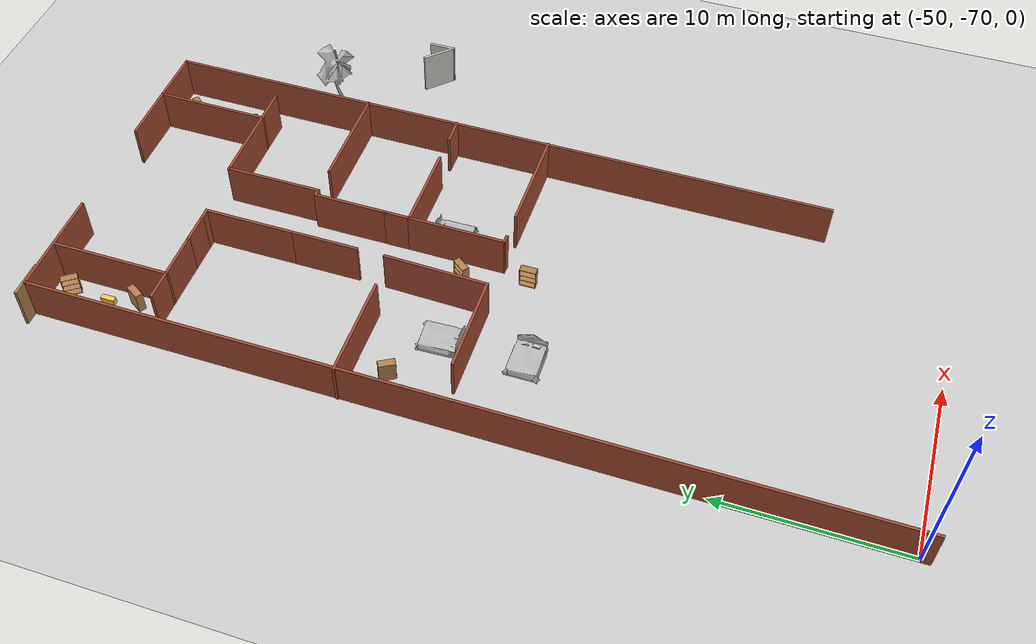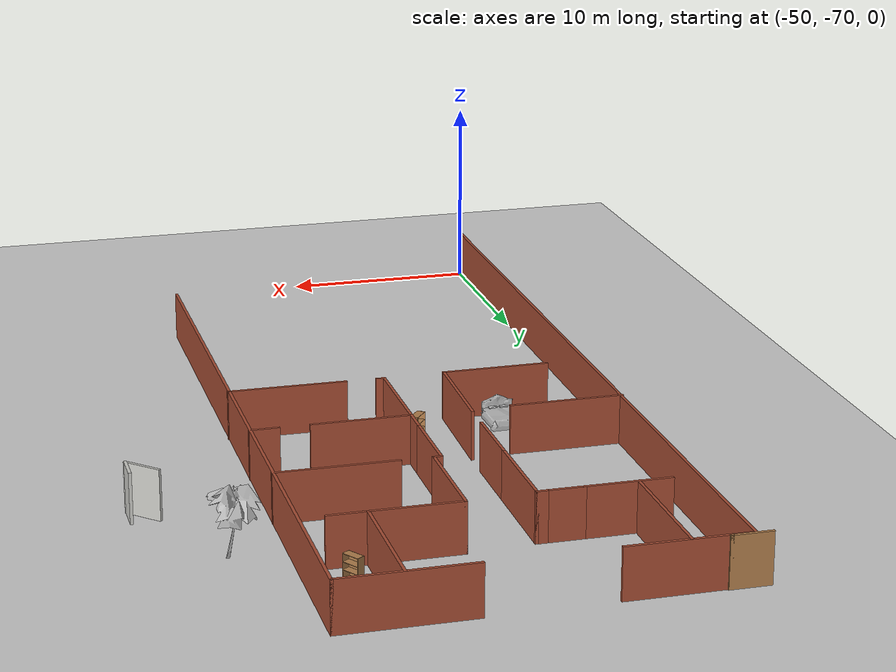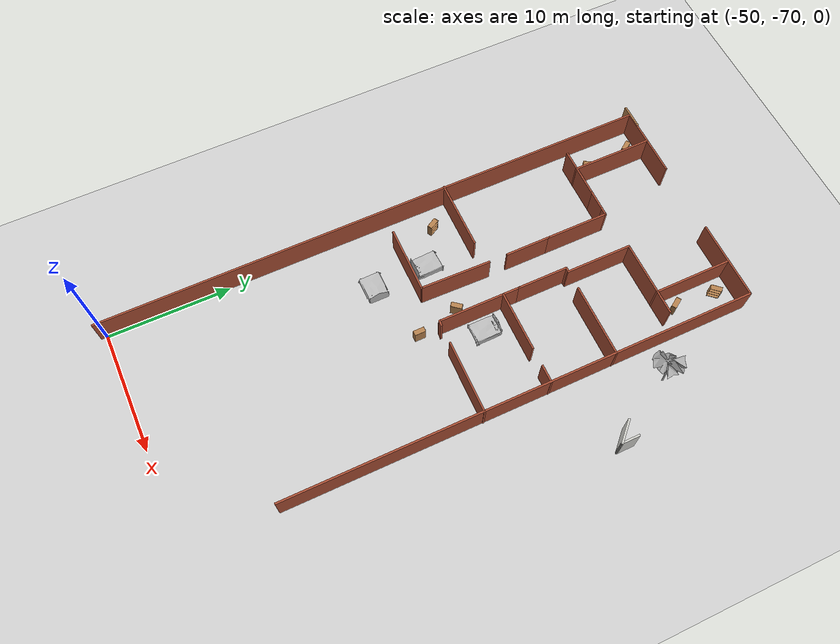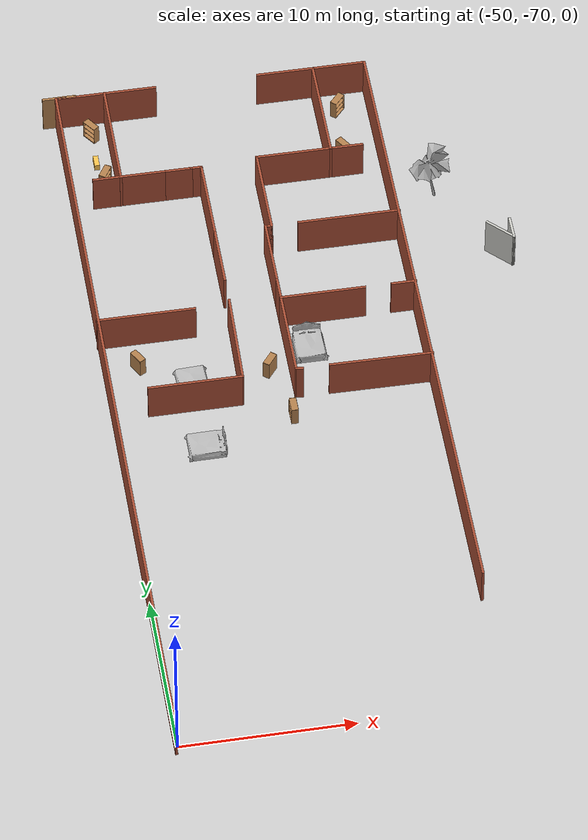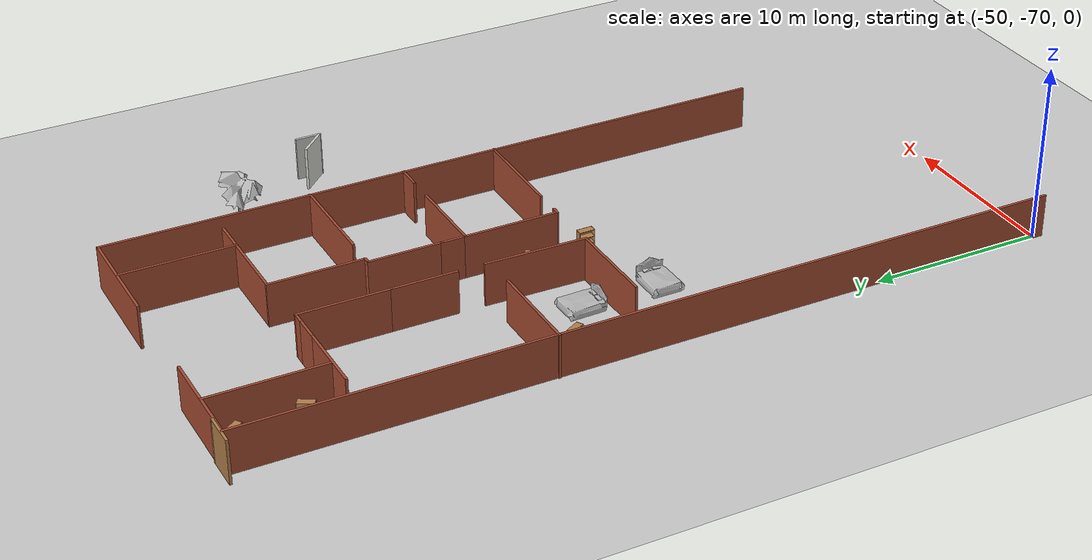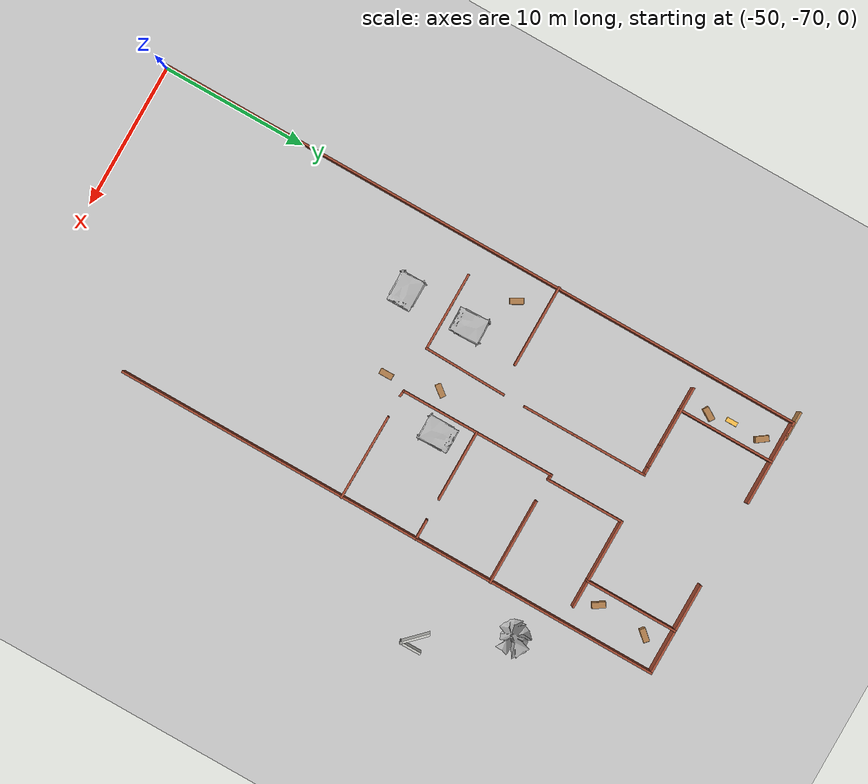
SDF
<sdf version="1.6">
 <world name="default">
  <model name="map_palace_v2_model_1_0">
   <pose>-3.1e-05 -55 0 0 -0 3.14</pose>
   <link name="Wall_272">
    <collision name="Wall_272_Collision">
     <geometry><box><size>4.25 0.15 2.5</size></box></geometry>
     <pose>0 0 1.25 0 -0 0</pose>
    </collision>
    <visual name="Wall_272_Visual">
     <pose>0 0 1.25 0 -0 0</pose>
     <geometry><box><size>4.25 0.15 2.5</size></box></geometry>
     <material>
      <script><uri>file://media/materials/scripts/gazebo.material</uri><name>Gazebo/Bricks</name></script>
      <ambient>1 1 1 1</ambient>
     </material>
     <meta><layer>0</layer></meta>
    </visual>
    <pose>46.7523 -24.2485 0 0 -0 3.14159</pose>
   </link>
   <link name="Wall_273">
    <collision name="Wall_273_Collision">
     <geometry><box><size>1.75 0.15 2.5</size></box></geometry>
     <pose>0 0 1.25 0 -0 0</pose>
    </collision>
    <visual name="Wall_273_Visual">
     <pose>0 0 1.25 0 -0 0</pose>
     <geometry><box><size>1.75 0.15 2.5</size></box></geometry>
     <material>
      <script><uri>file://media/materials/scripts/gazebo.material</uri><name>Gazebo/Bricks</name></script>
      <ambient>1 1 1 1</ambient>
     </material>
     <meta><layer>0</layer></meta>
    </visual>
    <pose>43.9023 -24.2485 0 0 -0 3.14159</pose>
   </link>
   <link name="Wall_274">
    <collision name="Wall_274_Collision">
     <geometry><box><size>0.75 0.15 2.5</size></box></geometry>
     <pose>0 0 1.25 0 -0 0</pose>
    </collision>
    <visual name="Wall_274_Visual">
     <pose>0 0 1.25 0 -0 0</pose>
     <geometry><box><size>0.75 0.15 2.5</size></box></geometry>
     <material>
      <script><uri>file://media/materials/scripts/gazebo.material</uri><name>Gazebo/Bricks</name></script>
      <ambient>1 1 1 1</ambient>
     </material>
     <meta><layer>0</layer></meta>
    </visual>
    <pose>42.8023 -24.2485 0 0 -0 3.14159</pose>
   </link>
   <link name="Wall_275">
    <collision name="Wall_275_Collision">
     <geometry><box><size>5.25 0.15 2.5</size></box></geometry>
     <pose>0 0 1.25 0 -0 0</pose>
    </collision>
    <visual name="Wall_275_Visual">
     <pose>0 0 1.25 0 -0 0</pose>
     <geometry><box><size>5.25 0.15 2.5</size></box></geometry>
     <material>
      <script><uri>file://media/materials/scripts/gazebo.material</uri><name>Gazebo/Bricks</name></script>
      <ambient>1 1 1 1</ambient>
     </material>
     <meta><layer>0</layer></meta>
    </visual>
    <pose>42.5023 -21.6985 0 0 -0 1.5708</pose>
   </link>
   <link name="Wall_277">
    <collision name="Wall_277_Collision">
     <geometry><box><size>6.75 0.15 2.5</size></box></geometry>
     <pose>0 0 1.25 0 -0 0</pose>
    </collision>
    <visual name="Wall_277_Visual">
     <pose>0 0 1.25 0 -0 0</pose>
     <geometry><box><size>6.75 0.15 2.5</size></box></geometry>
     <material>
      <script><uri>file://media/materials/scripts/gazebo.material</uri><name>Gazebo/Bricks</name></script>
      <ambient>1 1 1 1</ambient>
     </material>
     <meta><layer>0</layer></meta>
    </visual>
    <pose>47.2274 -27.5415 0 0 -0 -1.5708</pose>
   </link>
   <link name="Wall_279">
    <collision name="Wall_279_Collision">
     <geometry><box><size>6.5 0.15 2.5</size></box></geometry>
     <pose>0 0 1.25 0 -0 0</pose>
    </collision>
    <visual name="Wall_279_Visual">
     <pose>0 0 1.25 0 -0 0</pose>
     <geometry><box><size>6.5 0.15 2.5</size></box></geometry>
     <material>
      <script><uri>file://media/materials/scripts/gazebo.material</uri><name>Gazebo/Bricks</name></script>
      <ambient>1 1 1 1</ambient>
     </material>
     <meta><layer>0</layer></meta>
    </visual>
    <pose>34.8569 -27.66 0 0 -0 1.5708</pose>
   </link>
   <link name="Wall_280">
    <collision name="Wall_280_Collision">
     <geometry><box><size>2 0.15 2.5</size></box></geometry>
     <pose>0 0 1.25 0 -0 0</pose>
    </collision>
    <visual name="Wall_280_Visual">
     <pose>0 0 1.25 0 -0 0</pose>
     <geometry><box><size>2 0.15 2.5</size></box></geometry>
     <material>
      <script><uri>file://media/materials/scripts/gazebo.material</uri><name>Gazebo/Bricks</name></script>
      <ambient>1 1 1 1</ambient>
     </material>
     <meta><layer>0</layer></meta>
    </visual>
    <pose>33.9319 -24.4851 0 0 -0 3.14159</pose>
   </link>
   <link name="Wall_283">
    <collision name="Wall_283_Collision">
     <geometry><box><size>4.5 0.15 2.5</size></box></geometry>
     <pose>0 0 1.25 0 -0 0</pose>
    </collision>
    <visual name="Wall_283_Visual">
     <pose>0 0 1.25 0 -0 0</pose>
     <geometry><box><size>4.5 0.15 2.5</size></box></geometry>
     <material>
      <script><uri>file://media/materials/scripts/gazebo.material</uri><name>Gazebo/Bricks</name></script>
      <ambient>1 1 1 1</ambient>
     </material>
     <meta><layer>0</layer></meta>
    </visual>
    <pose>37.0319 -24.4851 0 0 -0 0</pose>
   </link>
   <link name="Wall_284">
    <collision name="Wall_284_Collision">
     <geometry><box><size>5.5 0.15 2.5</size></box></geometry>
     <pose>0 0 1.25 0 -0 0</pose>
    </collision>
    <visual name="Wall_284_Visual">
     <pose>0 0 1.25 0 -0 0</pose>
     <geometry><box><size>5.5 0.15 2.5</size></box></geometry>
     <material>
      <script><uri>file://media/materials/scripts/gazebo.material</uri><name>Gazebo/Bricks</name></script>
      <ambient>1 1 1 1</ambient>
     </material>
     <meta><layer>0</layer></meta>
    </visual>
    <pose>39.2069 -21.8101 0 0 -0 1.5708</pose>
   </link>
   <link name="Wall_286">
    <collision name="Wall_286_Collision">
     <geometry><box><size>6 0.15 2.5</size></box></geometry>
     <pose>0 0 1.25 0 -0 0</pose>
    </collision>
    <visual name="Wall_286_Visual">
     <pose>0 0 1.25 0 -0 0</pose>
     <geometry><box><size>6 0.15 2.5</size></box></geometry>
     <material>
      <script><uri>file://media/materials/scripts/gazebo.material</uri><name>Gazebo/Bricks</name></script>
      <ambient>1 1 1 1</ambient>
     </material>
     <meta><layer>0</layer></meta>
    </visual>
    <pose>34.6819 -19.1351 0 0 -0 3.14159</pose>
   </link>
   <link name="Wall_288">
    <collision name="Wall_288_Collision">
     <geometry><box><size>0.5 0.15 2.5</size></box></geometry>
     <pose>0 0 1.25 0 -0 0</pose>
    </collision>
    <visual name="Wall_288_Visual">
     <pose>0 0 1.25 0 -0 0</pose>
     <geometry><box><size>0.5 0.15 2.5</size></box></geometry>
     <material>
      <script><uri>file://media/materials/scripts/gazebo.material</uri><name>Gazebo/Bricks</name></script>
      <ambient>1 1 1 1</ambient>
     </material>
     <meta><layer>0</layer></meta>
    </visual>
    <pose>39.3819 -19.1351 0 0 -0 0</pose>
   </link>
   <link name="Wall_289">
    <collision name="Wall_289_Collision">
     <geometry><box><size>4.25 0.15 2.5</size></box></geometry>
     <pose>0 0 1.25 0 -0 0</pose>
    </collision>
    <visual name="Wall_289_Visual">
     <pose>0 0 1.25 0 -0 0</pose>
     <geometry><box><size>4.25 0.15 2.5</size></box></geometry>
     <material>
      <script><uri>file://media/materials/scripts/gazebo.material</uri><name>Gazebo/Bricks</name></script>
      <ambient>1 1 1 1</ambient>
     </material>
     <meta><layer>0</layer></meta>
    </visual>
    <pose>39.5569 -17.085 0 0 -0 1.5708</pose>
   </link>
   <link name="Wall_290">
    <collision name="Wall_290_Collision">
     <geometry><box><size>1.5 0.15 2.5</size></box></geometry>
     <pose>0 0 1.25 0 -0 0</pose>
    </collision>
    <visual name="Wall_290_Visual">
     <pose>0 0 1.25 0 -0 0</pose>
     <geometry><box><size>1.5 0.15 2.5</size></box></geometry>
     <material>
      <script><uri>file://media/materials/scripts/gazebo.material</uri><name>Gazebo/Bricks</name></script>
      <ambient>1 1 1 1</ambient>
     </material>
     <meta><layer>0</layer></meta>
    </visual>
    <pose>39.5569 -14.36 0 0 -0 1.5708</pose>
   </link>
   <link name="Wall_291">
    <collision name="Wall_291_Collision">
     <geometry><box><size>5 0.15 2.5</size></box></geometry>
     <pose>0 0 1.25 0 -0 0</pose>
    </collision>
    <visual name="Wall_291_Visual">
     <pose>0 0 1.25 0 -0 0</pose>
     <geometry><box><size>5 0.15 2.5</size></box></geometry>
     <material>
      <script><uri>file://media/materials/scripts/gazebo.material</uri><name>Gazebo/Bricks</name></script>
      <ambient>1 1 1 1</ambient>
     </material>
     <meta><layer>0</layer></meta>
    </visual>
    <pose>37.1319 -13.6851 0 0 -0 3.14159</pose>
   </link>
   <link name="Wall_293">
    <collision name="Wall_293_Collision">
     <geometry><box><size>1.5 0.15 2.5</size></box></geometry>
     <pose>0 0 1.25 0 -0 0</pose>
    </collision>
    <visual name="Wall_293_Visual">
     <pose>0 0 1.25 0 -0 0</pose>
     <geometry><box><size>1.5 0.15 2.5</size></box></geometry>
     <material>
      <script><uri>file://media/materials/scripts/gazebo.material</uri><name>Gazebo/Bricks</name></script>
      <ambient>1 1 1 1</ambient>
     </material>
     <meta><layer>0</layer></meta>
    </visual>
    <pose>32.4319 -13.6851 0 0 -0 3.14159</pose>
   </link>
   <link name="Wall_295">
    <collision name="Wall_295_Collision">
     <geometry><box><size>5.5 0.15 2.5</size></box></geometry>
     <pose>0 0 1.25 0 -0 0</pose>
    </collision>
    <visual name="Wall_295_Visual">
     <pose>0 0 1.25 0 -0 0</pose>
     <geometry><box><size>5.5 0.15 2.5</size></box></geometry>
     <material>
      <script><uri>file://media/materials/scripts/gazebo.material</uri><name>Gazebo/Bricks</name></script>
      <ambient>1 1 1 1</ambient>
     </material>
     <meta><layer>0</layer></meta>
    </visual>
    <pose>39.5569 -11.01 0 0 -0 1.5708</pose>
   </link>
   <link name="Wall_296">
    <collision name="Wall_296_Collision">
     <geometry><box><size>0.513653 0.15 2.5</size></box></geometry>
     <pose>0 0 1.25 0 -0 0</pose>
    </collision>
    <visual name="Wall_296_Visual">
     <pose>0 0 1.25 0 -0 0</pose>
     <geometry><box><size>0.513653 0.15 2.5</size></box></geometry>
     <material>
      <script><uri>file://media/materials/scripts/gazebo.material</uri><name>Gazebo/Bricks</name></script>
      <ambient>1 1 1 1</ambient>
     </material>
     <meta><layer>0</layer></meta>
    </visual>
    <pose>39.3759 -8.31805 0 0 -0 3.04799</pose>
   </link>
   <link name="Wall_298">
    <collision name="Wall_298_Collision">
     <geometry><box><size>6 0.15 2.5</size></box></geometry>
     <pose>0 0 1.25 0 -0 0</pose>
    </collision>
    <visual name="Wall_298_Visual">
     <pose>0 0 1.25 0 -0 0</pose>
     <geometry><box><size>6 0.15 2.5</size></box></geometry>
     <material>
      <script><uri>file://media/materials/scripts/gazebo.material</uri><name>Gazebo/Bricks</name></script>
      <ambient>1 1 1 1</ambient>
     </material>
     <meta><layer>0</layer></meta>
    </visual>
    <pose>34.6698 -8.27476 0 0 -0 3.1326</pose>
   </link>
   <link name="Wall_302">
    <collision name="Wall_302_Collision">
     <geometry><box><size>3.75 0.15 2.5</size></box></geometry>
     <pose>0 0 1.25 0 -0 0</pose>
    </collision>
    <visual name="Wall_302_Visual">
     <pose>0 0 1.25 0 -0 0</pose>
     <geometry><box><size>3.75 0.15 2.5</size></box></geometry>
     <material>
      <script><uri>file://media/materials/scripts/gazebo.material</uri><name>Gazebo/Bricks</name></script>
      <ambient>1 1 1 1</ambient>
     </material>
     <meta><layer>0</layer></meta>
    </visual>
    <pose>42.5023 -17.3485 0 0 -0 1.5708</pose>
   </link>
   <link name="Wall_304">
    <collision name="Wall_304_Collision">
     <geometry><box><size>5.8416 0.15 2.5</size></box></geometry>
     <pose>0 0 1.25 0 -0 0</pose>
    </collision>
    <visual name="Wall_304_Visual">
     <pose>0 0 1.25 0 -0 0</pose>
     <geometry><box><size>5.8416 0.15 2.5</size></box></geometry>
     <material>
      <script><uri>file://media/materials/scripts/gazebo.material</uri><name>Gazebo/Bricks</name></script>
      <ambient>1 1 1 1</ambient>
     </material>
     <meta><layer>0</layer></meta>
    </visual>
    <pose>42.5686 -11.1035 0 0 -0 1.54752</pose>
   </link>
   <link name="Wall_308">
    <collision name="Wall_308_Collision">
     <geometry><box><size>5.75 0.15 2.5</size></box></geometry>
     <pose>0 0 1.25 0 -0 0</pose>
    </collision>
    <visual name="Wall_308_Visual">
     <pose>0 0 1.25 0 -0 0</pose>
     <geometry><box><size>5.75 0.15 2.5</size></box></geometry>
     <material>
      <script><uri>file://media/materials/scripts/gazebo.material</uri><name>Gazebo/Bricks</name></script>
      <ambient>1 1 1 1</ambient>
     </material>
     <meta><layer>0</layer></meta>
    </visual>
    <pose>47.3327 -13.6615 0 0 -0 3.14159</pose>
   </link>
   <link name="Wall_310">
    <collision name="Wall_310_Collision">
     <geometry><box><size>5.5 0.15 2.5</size></box></geometry>
     <pose>0 0 1.25 0 -0 0</pose>
    </collision>
    <visual name="Wall_310_Visual">
     <pose>0 0 1.25 0 -0 0</pose>
     <geometry><box><size>5.5 0.15 2.5</size></box></geometry>
     <material>
      <script><uri>file://media/materials/scripts/gazebo.material</uri><name>Gazebo/Bricks</name></script>
      <ambient>1 1 1 1</ambient>
     </material>
     <meta><layer>0</layer></meta>
    </visual>
    <pose>45.3098 -8.25846 0 0 -0 0</pose>
   </link>
   <link name="Wall_32">
    <collision name="Wall_32_Collision">
     <geometry><box><size>38.75 0.15 2.5</size></box></geometry>
     <pose>0 0 1.25 0 -0 0</pose>
    </collision>
    <visual name="Wall_32_Visual">
     <pose>0 0 1.25 0 -0 0</pose>
     <geometry><box><size>38.75 0.15 2.5</size></box></geometry>
     <material>
      <script><uri>file://media/materials/scripts/gazebo.material</uri><name>Gazebo/Bricks</name></script>
      <ambient>1 1 1 1</ambient>
     </material>
     <meta><layer>0</layer></meta>
    </visual>
    <pose>31.7807 -11.5525 0 0 -0 -1.5708</pose>
   </link>
   <link name="Wall_33">
    <collision name="Wall_33_Collision">
     <geometry><box><size>6.5 0.15 2.5</size></box></geometry>
     <pose>0 0 1.25 0 -0 0</pose>
    </collision>
    <visual name="Wall_33_Visual">
     <pose>0 0 1.25 0 -0 0</pose>
     <geometry><box><size>6.5 0.15 2.5</size></box></geometry>
     <material>
      <script><uri>file://media/materials/scripts/gazebo.material</uri><name>Gazebo/Bricks</name></script>
      <ambient>1 1 1 1</ambient>
     </material>
     <meta><layer>0</layer></meta>
    </visual>
    <pose>34.9557 -30.8525 0 0 -0 0</pose>
   </link>
   <link name="Wall_35">
    <collision name="Wall_35_Collision">
     <geometry><box><size>6 0.15 2.5</size></box></geometry>
     <pose>0 0 1.25 0 -0 0</pose>
    </collision>
    <visual name="Wall_35_Visual">
     <pose>0 0 1.25 0 -0 0</pose>
     <geometry><box><size>6 0.15 2.5</size></box></geometry>
     <material>
      <script><uri>file://media/materials/scripts/gazebo.material</uri><name>Gazebo/Bricks</name></script>
      <ambient>0.760784 0.662745 0.627451 1</ambient>
     </material>
     <meta><layer>0</layer></meta>
    </visual>
    <pose>47.1557 -30.8525 0 0 -0 0</pose>
   </link>
   <link name="Wall_36">
    <collision name="Wall_36_Collision">
     <geometry><box><size>46.5 0.15 2.5</size></box></geometry>
     <pose>0 0 1.25 0 -0 0</pose>
    </collision>
    <visual name="Wall_36_Visual">
     <pose>0 0 1.25 0 -0 0</pose>
     <geometry><box><size>46.5 0.15 2.5</size></box></geometry>
     <material>
      <script><uri>file://media/materials/scripts/gazebo.material</uri><name>Gazebo/Bricks</name></script>
      <ambient>1 1 1 1</ambient>
     </material>
     <meta><layer>0</layer></meta>
    </visual>
    <pose>50.0807 -7.67754 0 0 -0 1.5708</pose>
   </link>
   <static>1</static>
  </model>
  <model name="bed2">
   <link name="link_1">
    <inertial>
     <mass>1</mass>
     <inertia>
      <ixx>0.166667</ixx>
      <ixy>0</ixy>
      <ixz>0</ixz>
      <iyy>0.166667</iyy>
      <iyz>0</iyz>
      <izz>0.166667</izz>
     </inertia>
    </inertial>
    <visual name="visual">
     <pose>0 0 0 1.57 -0 0</pose>
     <geometry><mesh><uri>model://bed2/bed3.obj</uri><scale>1 1 1</scale></mesh></geometry>
    </visual>
    <collision name="collision">
     <pose>0 0 0 1.57 -0 0</pose>
     <geometry><mesh><uri>model://bed2/bed3.obj</uri><scale>1 1 1</scale></mesh></geometry>
     <surface>
      <friction>
       <ode><mu>1</mu><mu2>1</mu2><fdir1>0 0 0</fdir1><slip1>0</slip1><slip2>0</slip2></ode>
       <torsional>
        <coefficient>1</coefficient>
        <patch_radius>0</patch_radius>
        <surface_radius>0</surface_radius>
        <use_patch_radius>1</use_patch_radius>
        <ode><slip>0</slip></ode>
       </torsional>
      </friction>
      <bounce><restitution_coefficient>0</restitution_coefficient><threshold>1e+06</threshold></bounce>
      <contact>
       <collide_without_contact>0</collide_without_contact>
       <collide_without_contact_bitmask>1</collide_without_contact_bitmask>
       <collide_bitmask>1</collide_bitmask>
       <ode>
        <soft_cfm>0</soft_cfm>
        <soft_erp>0.2</soft_erp>
        <kp>1e+13</kp>
        <kd>1</kd>
        <max_vel>0.01</max_vel>
        <min_depth>0</min_depth>
       </ode>
       <bullet>
        <split_impulse>1</split_impulse>
        <split_impulse_penetration_threshold>-0.01</split_impulse_penetration_threshold>
        <soft_cfm>0</soft_cfm>
        <soft_erp>0.2</soft_erp>
        <kp>1e+13</kp>
        <kd>1</kd>
       </bullet>
      </contact>
     </surface>
    </collision>
   </link>
   <static>1</static>
   <pose>-38.2362 -42.2956 0 0 -0 0</pose>
  </model>
  <model name="bed2_0">
   <link name="link_1">
    <inertial>
     <mass>1</mass>
     <inertia>
      <ixx>0.166667</ixx>
      <ixy>0</ixy>
      <ixz>0</ixz>
      <iyy>0.166667</iyy>
      <iyz>0</iyz>
      <izz>0.166667</izz>
     </inertia>
    </inertial>
    <visual name="visual">
     <pose>0 0 0 1.57 -0 0</pose>
     <geometry><mesh><uri>model://bed2/bed3.obj</uri><scale>1 1 1</scale></mesh></geometry>
    </visual>
    <collision name="collision">
     <pose>0 0 0 1.57 -0 0</pose>
     <geometry><mesh><uri>model://bed2/bed3.obj</uri><scale>1 1 1</scale></mesh></geometry>
     <surface>
      <friction>
       <ode><mu>1</mu><mu2>1</mu2><fdir1>0 0 0</fdir1><slip1>0</slip1><slip2>0</slip2></ode>
       <torsional>
        <coefficient>1</coefficient>
        <patch_radius>0</patch_radius>
        <surface_radius>0</surface_radius>
        <use_patch_radius>1</use_patch_radius>
        <ode><slip>0</slip></ode>
       </torsional>
      </friction>
      <bounce><restitution_coefficient>0</restitution_coefficient><threshold>1e+06</threshold></bounce>
      <contact>
       <collide_without_contact>0</collide_without_contact>
       <collide_without_contact_bitmask>1</collide_without_contact_bitmask>
       <collide_bitmask>1</collide_bitmask>
       <ode>
        <soft_cfm>0</soft_cfm>
        <soft_erp>0.2</soft_erp>
        <kp>1e+13</kp>
        <kd>1</kd>
        <max_vel>0.01</max_vel>
        <min_depth>0</min_depth>
       </ode>
       <bullet>
        <split_impulse>1</split_impulse>
        <split_impulse_penetration_threshold>-0.01</split_impulse_penetration_threshold>
        <soft_cfm>0</soft_cfm>
        <soft_erp>0.2</soft_erp>
        <kp>1e+13</kp>
        <kd>1</kd>
       </bullet>
      </contact>
     </surface>
    </collision>
   </link>
   <static>1</static>
   <pose>-44.1295 -49.6337 0 0 0 -1.57228</pose>
  </model>
  <model name="bookshelf">
   <static>1</static>
   <link name="link">
    <inertial><mass>1</mass></inertial>
    <collision name="back">
     <pose>0 0.005 0.6 0 -0 0</pose>
     <geometry><box><size>0.9 0.01 1.2</size></box></geometry>
    </collision>
    <visual name="visual1">
     <pose>0 0.005 0.6 0 -0 0</pose>
     <geometry><box><size>0.9 0.01 1.2</size></box></geometry>
     <material>
      <script><uri>file://media/materials/scripts/gazebo.material</uri><name>Gazebo/Wood</name></script>
     </material>
    </visual>
    <collision name="left_side">
     <pose>0.45 -0.195 0.6 0 -0 0</pose>
     <geometry><box><size>0.02 0.4 1.2</size></box></geometry>
    </collision>
    <visual name="visual2">
     <pose>0.45 -0.195 0.6 0 -0 0</pose>
     <geometry><box><size>0.02 0.4 1.2</size></box></geometry>
     <material>
      <script><uri>file://media/materials/scripts/gazebo.material</uri><name>Gazebo/Wood</name></script>
     </material>
    </visual>
    <collision name="right_side">
     <pose>-0.45 -0.195 0.6 0 -0 0</pose>
     <geometry><box><size>0.02 0.4 1.2</size></box></geometry>
    </collision>
    <visual name="visual3">
     <pose>-0.45 -0.195 0.6 0 -0 0</pose>
     <geometry><box><size>0.02 0.4 1.2</size></box></geometry>
     <material>
      <script><uri>file://media/materials/scripts/gazebo.material</uri><name>Gazebo/Wood</name></script>
     </material>
    </visual>
    <collision name="bottom">
     <pose>0 -0.195 0.03 0 -0 0</pose>
     <geometry><box><size>0.88 0.4 0.06</size></box></geometry>
    </collision>
    <visual name="visual4">
     <pose>0 -0.195 0.03 0 -0 0</pose>
     <geometry><box><size>0.88 0.4 0.06</size></box></geometry>
     <material>
      <script><uri>file://media/materials/scripts/gazebo.material</uri><name>Gazebo/Wood</name></script>
     </material>
    </visual>
    <collision name="top">
     <pose>0 -0.195 1.19 0 -0 0</pose>
     <geometry><box><size>0.88 0.4 0.02</size></box></geometry>
    </collision>
    <visual name="visual5">
     <pose>0 -0.195 1.19 0 -0 0</pose>
     <geometry><box><size>0.88 0.4 0.02</size></box></geometry>
     <material>
      <script><uri>file://media/materials/scripts/gazebo.material</uri><name>Gazebo/Wood</name></script>
     </material>
    </visual>
    <collision name="low_shelf">
     <pose>0 -0.195 0.43 0 -0 0</pose>
     <geometry><box><size>0.88 0.4 0.02</size></box></geometry>
    </collision>
    <visual name="visual6">
     <pose>0 -0.195 0.43 0 -0 0</pose>
     <geometry><box><size>0.88 0.4 0.02</size></box></geometry>
     <material>
      <script><uri>file://media/materials/scripts/gazebo.material</uri><name>Gazebo/Wood</name></script>
     </material>
    </visual>
    <collision name="high_shelf">
     <pose>0 -0.195 0.8 0 -0 0</pose>
     <geometry><box><size>0.88 0.4 0.02</size></box></geometry>
    </collision>
    <visual name="visual7">
     <pose>0 -0.195 0.8 0 -0 0</pose>
     <geometry><box><size>0.88 0.4 0.02</size></box></geometry>
     <material>
      <script><uri>file://media/materials/scripts/gazebo.material</uri><name>Gazebo/Wood</name></script>
     </material>
    </visual>
   </link>
   <pose>-48.2631 -43.2649 0 0 -0 2.08673</pose>
  </model>
  <model name="bookshelf_clone_0">
   <static>1</static>
   <link name="link">
    <inertial><mass>1</mass></inertial>
    <collision name="back">
     <pose>0 0.005 0.6 0 -0 0</pose>
     <geometry><box><size>0.9 0.01 1.2</size></box></geometry>
    </collision>
    <visual name="visual1">
     <pose>0 0.005 0.6 0 -0 0</pose>
     <geometry><box><size>0.9 0.01 1.2</size></box></geometry>
     <material>
      <script><uri>file://media/materials/scripts/gazebo.material</uri><name>Gazebo/Wood</name></script>
     </material>
    </visual>
    <collision name="left_side">
     <pose>0.45 -0.195 0.6 0 -0 0</pose>
     <geometry><box><size>0.02 0.4 1.2</size></box></geometry>
    </collision>
    <visual name="visual2">
     <pose>0.45 -0.195 0.6 0 -0 0</pose>
     <geometry><box><size>0.02 0.4 1.2</size></box></geometry>
     <material>
      <script><uri>file://media/materials/scripts/gazebo.material</uri><name>Gazebo/Wood</name></script>
     </material>
    </visual>
    <collision name="right_side">
     <pose>-0.45 -0.195 0.6 0 -0 0</pose>
     <geometry><box><size>0.02 0.4 1.2</size></box></geometry>
    </collision>
    <visual name="visual3">
     <pose>-0.45 -0.195 0.6 0 -0 0</pose>
     <geometry><box><size>0.02 0.4 1.2</size></box></geometry>
     <material>
      <script><uri>file://media/materials/scripts/gazebo.material</uri><name>Gazebo/Wood</name></script>
     </material>
    </visual>
    <collision name="bottom">
     <pose>0 -0.195 0.03 0 -0 0</pose>
     <geometry><box><size>0.88 0.4 0.06</size></box></geometry>
    </collision>
    <visual name="visual4">
     <pose>0 -0.195 0.03 0 -0 0</pose>
     <geometry><box><size>0.88 0.4 0.06</size></box></geometry>
     <material>
      <script><uri>file://media/materials/scripts/gazebo.material</uri><name>Gazebo/Wood</name></script>
     </material>
    </visual>
    <collision name="top">
     <pose>0 -0.195 1.19 0 -0 0</pose>
     <geometry><box><size>0.88 0.4 0.02</size></box></geometry>
    </collision>
    <visual name="visual5">
     <pose>0 -0.195 1.19 0 -0 0</pose>
     <geometry><box><size>0.88 0.4 0.02</size></box></geometry>
     <material>
      <script><uri>file://media/materials/scripts/gazebo.material</uri><name>Gazebo/Wood</name></script>
     </material>
    </visual>
    <collision name="low_shelf">
     <pose>0 -0.195 0.43 0 -0 0</pose>
     <geometry><box><size>0.88 0.4 0.02</size></box></geometry>
    </collision>
    <visual name="visual6">
     <pose>0 -0.195 0.43 0 -0 0</pose>
     <geometry><box><size>0.88 0.4 0.02</size></box></geometry>
     <material>
      <script><uri>file://media/materials/scripts/gazebo.material</uri><name>Gazebo/Wood</name></script>
     </material>
    </visual>
    <collision name="high_shelf">
     <pose>0 -0.195 0.8 0 -0 0</pose>
     <geometry><box><size>0.88 0.4 0.02</size></box></geometry>
    </collision>
    <visual name="visual7">
     <pose>0 -0.195 0.8 0 -0 0</pose>
     <geometry><box><size>0.88 0.4 0.02</size></box></geometry>
     <material>
      <script><uri>file://media/materials/scripts/gazebo.material</uri><name>Gazebo/Wood</name></script>
     </material>
    </visual>
   </link>
   <pose>-33.7186 -25.4135 0 0 -0 0.8458</pose>
  </model>
  <model name="bookshelf_clone_2">
   <static>1</static>
   <link name="link">
    <inertial><mass>1</mass></inertial>
    <collision name="back">
     <pose>0 0.005 0.6 0 -0 0</pose>
     <geometry><box><size>0.9 0.01 1.2</size></box></geometry>
    </collision>
    <visual name="visual1">
     <pose>0 0.005 0.6 0 -0 0</pose>
     <geometry><box><size>0.9 0.01 1.2</size></box></geometry>
     <material>
      <script><uri>file://media/materials/scripts/gazebo.material</uri><name>Gazebo/Wood</name></script>
     </material>
    </visual>
    <collision name="left_side">
     <pose>0.45 -0.195 0.6 0 -0 0</pose>
     <geometry><box><size>0.02 0.4 1.2</size></box></geometry>
    </collision>
    <visual name="visual2">
     <pose>0.45 -0.195 0.6 0 -0 0</pose>
     <geometry><box><size>0.02 0.4 1.2</size></box></geometry>
     <material>
      <script><uri>file://media/materials/scripts/gazebo.material</uri><name>Gazebo/Wood</name></script>
     </material>
    </visual>
    <collision name="right_side">
     <pose>-0.45 -0.195 0.6 0 -0 0</pose>
     <geometry><box><size>0.02 0.4 1.2</size></box></geometry>
    </collision>
    <visual name="visual3">
     <pose>-0.45 -0.195 0.6 0 -0 0</pose>
     <geometry><box><size>0.02 0.4 1.2</size></box></geometry>
     <material>
      <script><uri>file://media/materials/scripts/gazebo.material</uri><name>Gazebo/Wood</name></script>
     </material>
    </visual>
    <collision name="bottom">
     <pose>0 -0.195 0.03 0 -0 0</pose>
     <geometry><box><size>0.88 0.4 0.06</size></box></geometry>
    </collision>
    <visual name="visual4">
     <pose>0 -0.195 0.03 0 -0 0</pose>
     <geometry><box><size>0.88 0.4 0.06</size></box></geometry>
     <material>
      <script><uri>file://media/materials/scripts/gazebo.material</uri><name>Gazebo/Wood</name></script>
     </material>
    </visual>
    <collision name="top">
     <pose>0 -0.195 1.19 0 -0 0</pose>
     <geometry><box><size>0.88 0.4 0.02</size></box></geometry>
    </collision>
    <visual name="visual5">
     <pose>0 -0.195 1.19 0 -0 0</pose>
     <geometry><box><size>0.88 0.4 0.02</size></box></geometry>
     <material>
      <script><uri>file://media/materials/scripts/gazebo.material</uri><name>Gazebo/Wood</name></script>
     </material>
    </visual>
    <collision name="low_shelf">
     <pose>0 -0.195 0.43 0 -0 0</pose>
     <geometry><box><size>0.88 0.4 0.02</size></box></geometry>
    </collision>
    <visual name="visual6">
     <pose>0 -0.195 0.43 0 -0 0</pose>
     <geometry><box><size>0.88 0.4 0.02</size></box></geometry>
     <material>
      <script><uri>file://media/materials/scripts/gazebo.material</uri><name>Gazebo/Wood</name></script>
     </material>
    </visual>
    <collision name="high_shelf">
     <pose>0 -0.195 0.8 0 -0 0</pose>
     <geometry><box><size>0.88 0.4 0.02</size></box></geometry>
    </collision>
    <visual name="visual7">
     <pose>0 -0.195 0.8 0 -0 0</pose>
     <geometry><box><size>0.88 0.4 0.02</size></box></geometry>
     <material>
      <script><uri>file://media/materials/scripts/gazebo.material</uri><name>Gazebo/Wood</name></script>
     </material>
    </visual>
   </link>
   <pose>-33.9664 -29.1338 0 0 -0 2.14201</pose>
  </model>
  <model name="bookshelf_clone_0_clone">
   <static>1</static>
   <link name="link">
    <inertial><mass>1</mass></inertial>
    <collision name="back">
     <pose>0 0.005 0.6 0 -0 0</pose>
     <geometry><box><size>0.9 0.01 1.2</size></box></geometry>
    </collision>
    <visual name="visual1">
     <pose>0 0.005 0.6 0 -0 0</pose>
     <geometry><box><size>0.9 0.01 1.2</size></box></geometry>
     <material>
      <script><uri>file://media/materials/scripts/gazebo.material</uri><name>Gazebo/Wood</name></script>
     </material>
    </visual>
    <collision name="left_side">
     <pose>0.45 -0.195 0.6 0 -0 0</pose>
     <geometry><box><size>0.02 0.4 1.2</size></box></geometry>
    </collision>
    <visual name="visual2">
     <pose>0.45 -0.195 0.6 0 -0 0</pose>
     <geometry><box><size>0.02 0.4 1.2</size></box></geometry>
     <material>
      <script><uri>file://media/materials/scripts/gazebo.material</uri><name>Gazebo/Wood</name></script>
     </material>
    </visual>
    <collision name="right_side">
     <pose>-0.45 -0.195 0.6 0 -0 0</pose>
     <geometry><box><size>0.02 0.4 1.2</size></box></geometry>
    </collision>
    <visual name="visual3">
     <pose>-0.45 -0.195 0.6 0 -0 0</pose>
     <geometry><box><size>0.02 0.4 1.2</size></box></geometry>
     <material>
      <script><uri>file://media/materials/scripts/gazebo.material</uri><name>Gazebo/Wood</name></script>
     </material>
    </visual>
    <collision name="bottom">
     <pose>0 -0.195 0.03 0 -0 0</pose>
     <geometry><box><size>0.88 0.4 0.06</size></box></geometry>
    </collision>
    <visual name="visual4">
     <pose>0 -0.195 0.03 0 -0 0</pose>
     <geometry><box><size>0.88 0.4 0.06</size></box></geometry>
     <material>
      <script><uri>file://media/materials/scripts/gazebo.material</uri><name>Gazebo/Wood</name></script>
     </material>
    </visual>
    <collision name="top">
     <pose>0 -0.195 1.19 0 -0 0</pose>
     <geometry><box><size>0.88 0.4 0.02</size></box></geometry>
    </collision>
    <visual name="visual5">
     <pose>0 -0.195 1.19 0 -0 0</pose>
     <geometry><box><size>0.88 0.4 0.02</size></box></geometry>
     <material>
      <script><uri>file://media/materials/scripts/gazebo.material</uri><name>Gazebo/Wood</name></script>
     </material>
    </visual>
    <collision name="low_shelf">
     <pose>0 -0.195 0.43 0 -0 0</pose>
     <geometry><box><size>0.88 0.4 0.02</size></box></geometry>
    </collision>
    <visual name="visual6">
     <pose>0 -0.195 0.43 0 -0 0</pose>
     <geometry><box><size>0.88 0.4 0.02</size></box></geometry>
     <material>
      <script><uri>file://media/materials/scripts/gazebo.material</uri><name>Gazebo/Wood</name></script>
     </material>
    </visual>
    <collision name="high_shelf">
     <pose>0 -0.195 0.8 0 -0 0</pose>
     <geometry><box><size>0.88 0.4 0.02</size></box></geometry>
    </collision>
    <visual name="visual7">
     <pose>0 -0.195 0.8 0 -0 0</pose>
     <geometry><box><size>0.88 0.4 0.02</size></box></geometry>
     <material>
      <script><uri>file://media/materials/scripts/gazebo.material</uri><name>Gazebo/Wood</name></script>
     </material>
    </visual>
   </link>
   <pose>-48.0057 -25.0974 0 0 0 -0.949822</pose>
  </model>
  <model name="bookshelf_clone_1_clone_0">
   <static>1</static>
   <link name="link">
    <inertial><mass>1</mass></inertial>
    <collision name="back">
     <pose>0 0.005 0.6 0 -0 0</pose>
     <geometry><box><size>0.9 0.01 1.2</size></box></geometry>
    </collision>
    <visual name="visual1">
     <pose>0 0.005 0.6 0 -0 0</pose>
     <geometry><box><size>0.9 0.01 1.2</size></box></geometry>
     <material>
      <script><uri>file://media/materials/scripts/gazebo.material</uri><name>Gazebo/Wood</name></script>
     </material>
    </visual>
    <collision name="left_side">
     <pose>0.45 -0.195 0.6 0 -0 0</pose>
     <geometry><box><size>0.02 0.4 1.2</size></box></geometry>
    </collision>
    <visual name="visual2">
     <pose>0.45 -0.195 0.6 0 -0 0</pose>
     <geometry><box><size>0.02 0.4 1.2</size></box></geometry>
     <material>
      <script><uri>file://media/materials/scripts/gazebo.material</uri><name>Gazebo/Wood</name></script>
     </material>
    </visual>
    <collision name="right_side">
     <pose>-0.45 -0.195 0.6 0 -0 0</pose>
     <geometry><box><size>0.02 0.4 1.2</size></box></geometry>
    </collision>
    <visual name="visual3">
     <pose>-0.45 -0.195 0.6 0 -0 0</pose>
     <geometry><box><size>0.02 0.4 1.2</size></box></geometry>
     <material>
      <script><uri>file://media/materials/scripts/gazebo.material</uri><name>Gazebo/Wood</name></script>
     </material>
    </visual>
    <collision name="bottom">
     <pose>0 -0.195 0.03 0 -0 0</pose>
     <geometry><box><size>0.88 0.4 0.06</size></box></geometry>
    </collision>
    <visual name="visual4">
     <pose>0 -0.195 0.03 0 -0 0</pose>
     <geometry><box><size>0.88 0.4 0.06</size></box></geometry>
     <material>
      <script><uri>file://media/materials/scripts/gazebo.material</uri><name>Gazebo/Wood</name></script>
     </material>
    </visual>
    <collision name="top">
     <pose>0 -0.195 1.19 0 -0 0</pose>
     <geometry><box><size>0.88 0.4 0.02</size></box></geometry>
    </collision>
    <visual name="visual5">
     <pose>0 -0.195 1.19 0 -0 0</pose>
     <geometry><box><size>0.88 0.4 0.02</size></box></geometry>
     <material>
      <script><uri>file://media/materials/scripts/gazebo.material</uri><name>Gazebo/Wood</name></script>
     </material>
    </visual>
    <collision name="low_shelf">
     <pose>0 -0.195 0.43 0 -0 0</pose>
     <geometry><box><size>0.88 0.4 0.02</size></box></geometry>
    </collision>
    <visual name="visual6">
     <pose>0 -0.195 0.43 0 -0 0</pose>
     <geometry><box><size>0.88 0.4 0.02</size></box></geometry>
     <material>
      <script><uri>file://media/materials/scripts/gazebo.material</uri><name>Gazebo/Wood</name></script>
     </material>
    </visual>
    <collision name="high_shelf">
     <pose>0 -0.195 0.8 0 -0 0</pose>
     <geometry><box><size>0.88 0.4 0.02</size></box></geometry>
    </collision>
    <visual name="visual7">
     <pose>0 -0.195 0.8 0 -0 0</pose>
     <geometry><box><size>0.88 0.4 0.02</size></box></geometry>
     <material>
      <script><uri>file://media/materials/scripts/gazebo.material</uri><name>Gazebo/Wood</name></script>
     </material>
    </visual>
   </link>
   <pose>-48.0428 -28.8434 0 0 -0 1.0181</pose>
  </model>
  <model name="bookshelf_clone_1_clone_clone">
   <static>1</static>
   <link name="link">
    <inertial><mass>1</mass></inertial>
    <collision name="back">
     <pose>0 0.005 0.6 0 -0 0</pose>
     <geometry><box><size>0.9 0.01 1.2</size></box></geometry>
    </collision>
    <visual name="visual1">
     <pose>0 0.005 0.6 0 -0 0</pose>
     <geometry><box><size>0.9 0.01 1.2</size></box></geometry>
     <material>
      <script><uri>file://media/materials/scripts/gazebo.material</uri><name>Gazebo/Wood</name></script>
     </material>
    </visual>
    <collision name="left_side">
     <pose>0.45 -0.195 0.6 0 -0 0</pose>
     <geometry><box><size>0.02 0.4 1.2</size></box></geometry>
    </collision>
    <visual name="visual2">
     <pose>0.45 -0.195 0.6 0 -0 0</pose>
     <geometry><box><size>0.02 0.4 1.2</size></box></geometry>
     <material>
      <script><uri>file://media/materials/scripts/gazebo.material</uri><name>Gazebo/Wood</name></script>
     </material>
    </visual>
    <collision name="right_side">
     <pose>-0.45 -0.195 0.6 0 -0 0</pose>
     <geometry><box><size>0.02 0.4 1.2</size></box></geometry>
    </collision>
    <visual name="visual3">
     <pose>-0.45 -0.195 0.6 0 -0 0</pose>
     <geometry><box><size>0.02 0.4 1.2</size></box></geometry>
     <material>
      <script><uri>file://media/materials/scripts/gazebo.material</uri><name>Gazebo/Wood</name></script>
     </material>
    </visual>
    <collision name="bottom">
     <pose>0 -0.195 0.03 0 -0 0</pose>
     <geometry><box><size>0.88 0.4 0.06</size></box></geometry>
    </collision>
    <visual name="visual4">
     <pose>0 -0.195 0.03 0 -0 0</pose>
     <geometry><box><size>0.88 0.4 0.06</size></box></geometry>
     <material>
      <script><uri>file://media/materials/scripts/gazebo.material</uri><name>Gazebo/Wood</name></script>
     </material>
    </visual>
    <collision name="top">
     <pose>0 -0.195 1.19 0 -0 0</pose>
     <geometry><box><size>0.88 0.4 0.02</size></box></geometry>
    </collision>
    <visual name="visual5">
     <pose>0 -0.195 1.19 0 -0 0</pose>
     <geometry><box><size>0.88 0.4 0.02</size></box></geometry>
     <material>
      <script><uri>file://media/materials/scripts/gazebo.material</uri><name>Gazebo/Wood</name></script>
     </material>
    </visual>
    <collision name="low_shelf">
     <pose>0 -0.195 0.43 0 -0 0</pose>
     <geometry><box><size>0.88 0.4 0.02</size></box></geometry>
    </collision>
    <visual name="visual6">
     <pose>0 -0.195 0.43 0 -0 0</pose>
     <geometry><box><size>0.88 0.4 0.02</size></box></geometry>
     <material>
      <script><uri>file://media/materials/scripts/gazebo.material</uri><name>Gazebo/Wood</name></script>
     </material>
    </visual>
    <collision name="high_shelf">
     <pose>0 -0.195 0.8 0 -0 0</pose>
     <geometry><box><size>0.88 0.4 0.02</size></box></geometry>
    </collision>
    <visual name="visual7">
     <pose>0 -0.195 0.8 0 -0 0</pose>
     <geometry><box><size>0.88 0.4 0.02</size></box></geometry>
     <material>
      <script><uri>file://media/materials/scripts/gazebo.material</uri><name>Gazebo/Wood</name></script>
     </material>
    </visual>
   </link>
   <pose>-39.7343 -48.1036 0 0 0 -1.56613</pose>
  </model>
  <model name="bookshelf_clone_1_clone_clone_0">
   <static>1</static>
   <link name="link">
    <inertial><mass>1</mass></inertial>
    <collision name="back">
     <pose>0 0.005 0.6 0 -0 0</pose>
     <geometry><box><size>0.9 0.01 1.2</size></box></geometry>
    </collision>
    <visual name="visual1">
     <pose>0 0.005 0.6 0 -0 0</pose>
     <geometry><box><size>0.9 0.01 1.2</size></box></geometry>
     <material>
      <script><uri>file://media/materials/scripts/gazebo.material</uri><name>Gazebo/Wood</name></script>
     </material>
    </visual>
    <collision name="left_side">
     <pose>0.45 -0.195 0.6 0 -0 0</pose>
     <geometry><box><size>0.02 0.4 1.2</size></box></geometry>
    </collision>
    <visual name="visual2">
     <pose>0.45 -0.195 0.6 0 -0 0</pose>
     <geometry><box><size>0.02 0.4 1.2</size></box></geometry>
     <material>
      <script><uri>file://media/materials/scripts/gazebo.material</uri><name>Gazebo/Wood</name></script>
     </material>
    </visual>
    <collision name="right_side">
     <pose>-0.45 -0.195 0.6 0 -0 0</pose>
     <geometry><box><size>0.02 0.4 1.2</size></box></geometry>
    </collision>
    <visual name="visual3">
     <pose>-0.45 -0.195 0.6 0 -0 0</pose>
     <geometry><box><size>0.02 0.4 1.2</size></box></geometry>
     <material>
      <script><uri>file://media/materials/scripts/gazebo.material</uri><name>Gazebo/Wood</name></script>
     </material>
    </visual>
    <collision name="bottom">
     <pose>0 -0.195 0.03 0 -0 0</pose>
     <geometry><box><size>0.88 0.4 0.06</size></box></geometry>
    </collision>
    <visual name="visual4">
     <pose>0 -0.195 0.03 0 -0 0</pose>
     <geometry><box><size>0.88 0.4 0.06</size></box></geometry>
     <material>
      <script><uri>file://media/materials/scripts/gazebo.material</uri><name>Gazebo/Wood</name></script>
     </material>
    </visual>
    <collision name="top">
     <pose>0 -0.195 1.19 0 -0 0</pose>
     <geometry><box><size>0.88 0.4 0.02</size></box></geometry>
    </collision>
    <visual name="visual5">
     <pose>0 -0.195 1.19 0 -0 0</pose>
     <geometry><box><size>0.88 0.4 0.02</size></box></geometry>
     <material>
      <script><uri>file://media/materials/scripts/gazebo.material</uri><name>Gazebo/Wood</name></script>
     </material>
    </visual>
    <collision name="low_shelf">
     <pose>0 -0.195 0.43 0 -0 0</pose>
     <geometry><box><size>0.88 0.4 0.02</size></box></geometry>
    </collision>
    <visual name="visual6">
     <pose>0 -0.195 0.43 0 -0 0</pose>
     <geometry><box><size>0.88 0.4 0.02</size></box></geometry>
     <material>
      <script><uri>file://media/materials/scripts/gazebo.material</uri><name>Gazebo/Wood</name></script>
     </material>
    </visual>
    <collision name="high_shelf">
     <pose>0 -0.195 0.8 0 -0 0</pose>
     <geometry><box><size>0.88 0.4 0.02</size></box></geometry>
    </collision>
    <visual name="visual7">
     <pose>0 -0.195 0.8 0 -0 0</pose>
     <geometry><box><size>0.88 0.4 0.02</size></box></geometry>
     <material>
      <script><uri>file://media/materials/scripts/gazebo.material</uri><name>Gazebo/Wood</name></script>
     </material>
    </visual>
   </link>
   <pose>-40.5607 -44.7025 0 0 0 -2.23617</pose>
  </model>
  <model name="bed2_8">
   <link name="link_1">
    <inertial>
     <mass>1</mass>
     <inertia>
      <ixx>0.166667</ixx>
      <ixy>0</ixy>
      <ixz>0</ixz>
      <iyy>0.166667</iyy>
      <iyz>0</iyz>
      <izz>0.166667</izz>
     </inertia>
    </inertial>
    <visual name="visual">
     <pose>0 0 0 1.57 -0 0</pose>
     <geometry><mesh><uri>model://bed2/bed3.obj</uri><scale>1 1 1</scale></mesh></geometry>
    </visual>
    <collision name="collision">
     <pose>0 0 0 1.57 -0 0</pose>
     <geometry><mesh><uri>model://bed2/bed3.obj</uri><scale>1 1 1</scale></mesh></geometry>
     <surface>
      <friction>
       <ode><mu>1</mu><mu2>1</mu2><fdir1>0 0 0</fdir1><slip1>0</slip1><slip2>0</slip2></ode>
       <torsional>
        <coefficient>1</coefficient>
        <patch_radius>0</patch_radius>
        <surface_radius>0</surface_radius>
        <use_patch_radius>1</use_patch_radius>
        <ode><slip>0</slip></ode>
       </torsional>
      </friction>
      <bounce><restitution_coefficient>0</restitution_coefficient><threshold>1e+06</threshold></bounce>
      <contact>
       <collide_without_contact>0</collide_without_contact>
       <collide_without_contact_bitmask>1</collide_without_contact_bitmask>
       <collide_bitmask>1</collide_bitmask>
       <ode>
        <soft_cfm>0</soft_cfm>
        <soft_erp>0.2</soft_erp>
        <kp>1e+13</kp>
        <kd>1</kd>
        <max_vel>0.01</max_vel>
        <min_depth>0</min_depth>
       </ode>
       <bullet>
        <split_impulse>1</split_impulse>
        <split_impulse_penetration_threshold>-0.01</split_impulse_penetration_threshold>
        <soft_cfm>0</soft_cfm>
        <soft_erp>0.2</soft_erp>
        <kp>1e+13</kp>
        <kd>1</kd>
       </bullet>
      </contact>
     </surface>
    </collision>
   </link>
   <static>1</static>
   <pose>-45.2092 -46.0561 0 0 0 -3.11422</pose>
  </model>
  <model name="tree3_clone_28">
   <link name="link_1">
    <inertial>
     <mass>1</mass>
     <inertia>
      <ixx>0.166667</ixx>
      <ixy>0</ixy>
      <ixz>0</ixz>
      <iyy>0.166667</iyy>
      <iyz>0</iyz>
      <izz>0.166667</izz>
     </inertia>
    </inertial>
    <visual name="visual">
     <geometry><mesh><uri>model://tree3/Palmera.obj</uri><scale>1 1 1</scale></mesh></geometry>
    </visual>
    <collision name="collision">
     <geometry><mesh><uri>model://tree3/Palmera.obj</uri><scale>1 1 1</scale></mesh></geometry>
     <surface>
      <friction>
       <ode><mu>1</mu><mu2>1</mu2><fdir1>0 0 0</fdir1><slip1>0</slip1><slip2>0</slip2></ode>
       <torsional>
        <coefficient>1</coefficient>
        <patch_radius>0</patch_radius>
        <surface_radius>0</surface_radius>
        <use_patch_radius>1</use_patch_radius>
        <ode><slip>0</slip></ode>
       </torsional>
      </friction>
      <bounce><restitution_coefficient>0</restitution_coefficient><threshold>1e+06</threshold></bounce>
      <contact>
       <collide_without_contact>0</collide_without_contact>
       <collide_without_contact_bitmask>1</collide_without_contact_bitmask>
       <collide_bitmask>1</collide_bitmask>
       <ode>
        <soft_cfm>0</soft_cfm>
        <soft_erp>0.2</soft_erp>
        <kp>1e+13</kp>
        <kd>1</kd>
        <max_vel>0.01</max_vel>
        <min_depth>0</min_depth>
       </ode>
       <bullet>
        <split_impulse>1</split_impulse>
        <split_impulse_penetration_threshold>-0.01</split_impulse_penetration_threshold>
        <soft_cfm>0</soft_cfm>
        <soft_erp>0.2</soft_erp>
        <kp>1e+13</kp>
        <kd>1</kd>
       </bullet>
      </contact>
     </surface>
    </collision>
   </link>
   <static>1</static>
   <pose>-29.0934 -32.8277 0 0 -0 0</pose>
  </model>
  <model name="v_wall_1_0">
   <pose>-26.2106 -38.1988 0 0 -0 0</pose>
   <link name="Wall_0">
    <collision name="Wall_0_Collision">
     <geometry><box><size>2 0.15 2.5</size></box></geometry>
     <pose>0 0 1.25 0 -0 0</pose>
    </collision>
    <visual name="Wall_0_Visual">
     <pose>0 0 1.25 0 -0 0</pose>
     <geometry><box><size>2 0.15 2.5</size></box></geometry>
     <material>
      <script><uri>file://media/materials/scripts/gazebo.material</uri><name>Gazebo/CeilingTiled</name></script>
      <ambient>1 1 1 1</ambient>
     </material>
     <meta><layer>0</layer></meta>
    </visual>
    <pose>0 -0.005393 0 0 -0 -0.785398</pose>
   </link>
   <link name="Wall_1">
    <collision name="Wall_1_Collision">
     <geometry><box><size>1.5 0.15 2.5</size></box></geometry>
     <pose>0 0 1.25 0 -0 0</pose>
    </collision>
    <visual name="Wall_1_Visual">
     <pose>0 0 1.25 0 -0 0</pose>
     <geometry><box><size>1.5 0.15 2.5</size></box></geometry>
     <material>
      <script><uri>file://media/materials/scripts/gazebo.material</uri><name>Gazebo/CeilingTiled</name></script>
      <ambient>1 1 1 1</ambient>
     </material>
     <meta><layer>0</layer></meta>
    </visual>
    <pose>0.654074 0.015533 0 0 -0 1.5708</pose>
   </link>
   <static>1</static>
  </model>
  <model name="Box_15x30_13">
   <link name="Wall">
    <pose>0 0 0.1985 0 -0 0</pose>
    <inertial>
     <mass>5</mass>
     <inertia><ixx>0.3089</ixx><iyy>0.1022</iyy><izz>0.2797</izz><ixy>0</ixy><ixz>0</ixz><iyz>0</iyz></inertia>
    </inertial>
    <collision name="Wall_Collision"><geometry><box><size>0.296 0.764 0.397</size></box></geometry></collision>
    <visual name="Wall_Visual">
     <geometry><box><size>0.296 0.764 0.397</size></box></geometry>
     <material>
      <script><uri>file://media/materials/scripts/gazebo.material</uri><name>Gazebo/Grey</name></script>
      <ambient>1 0.764706 0.305882 1</ambient>
     </material>
    </visual>
   </link>
   <static>1</static>
   <pose>-48.1848 -27.3702 0 0 -0 0</pose>
  </model>
  <model name="wall_24">
   <pose>-49.8403 -24 0 0 -0 0</pose>
   <link name="Wall_2">
    <collision name="Wall_2_Collision">
     <geometry><box><size>2 0.15 2.5</size></box></geometry>
     <pose>0 0 1.25 0 -0 0</pose>
    </collision>
    <visual name="Wall_2_Visual">
     <pose>0 0 1.25 0 -0 0</pose>
     <geometry><box><size>2 0.15 2.5</size></box></geometry>
     <material>
      <script><uri>file://media/materials/scripts/gazebo.material</uri><name>Gazebo/Wood</name></script>
      <ambient>1 1 1 1</ambient>
     </material>
     <meta><layer>0</layer></meta>
    </visual>
    <pose>-0.005 -0 0 0 -0 0</pose>
   </link>
   <link name="Wall_3">
    <collision name="Wall_3_Collision">
     <geometry><box><size>0.16 0.15 2.5</size></box></geometry>
     <pose>0 0 1.25 0 -0 0</pose>
    </collision>
    <visual name="Wall_3_Visual">
     <pose>0 0 1.25 0 -0 0</pose>
     <geometry><box><size>0.16 0.15 2.5</size></box></geometry>
     <material>
      <script><uri>file://media/materials/scripts/gazebo.material</uri><name>Gazebo/Wood</name></script>
      <ambient>1 1 1 1</ambient>
     </material>
     <meta><layer>0</layer></meta>
    </visual>
    <pose>0.925 0 0 0 -0 0</pose>
   </link>
   <static>1</static>
  </model>
  <model name="ground_plane">
   <static>1</static>
   <link name="link">
    <collision name="collision">
     <geometry><plane><normal>0 0 1</normal><size>100 100</size></plane></geometry>
     <surface>
      <contact><collide_bitmask>65535</collide_bitmask></contact>
      <friction><ode><mu>100</mu><mu2>50</mu2></ode></friction>
     </surface>
    </collision>
    <visual name="visual">
     <cast_shadows>0</cast_shadows>
     <geometry><plane><normal>0 0 1</normal><size>100 100</size></plane></geometry>
     <material>
      <script><uri>file://media/materials/scripts/gazebo.material</uri><name>Gazebo/Grey</name></script>
     </material>
    </visual>
   </link>
   <pose>9.31394 52.073 0 0 -0 0</pose>
  </model>
 </world>
</sdf>
